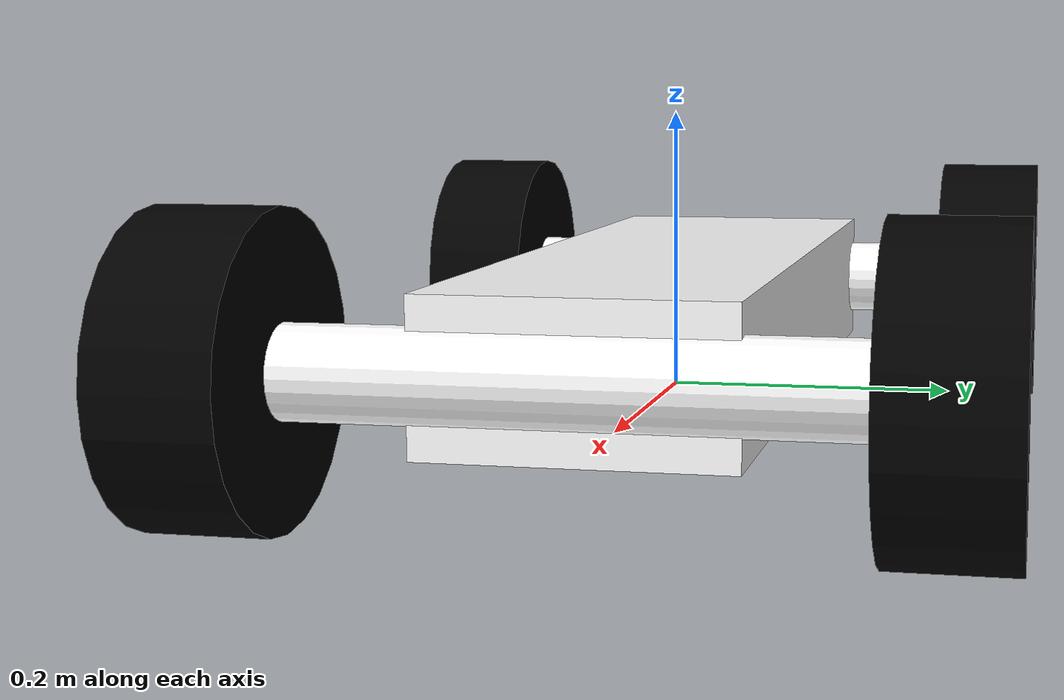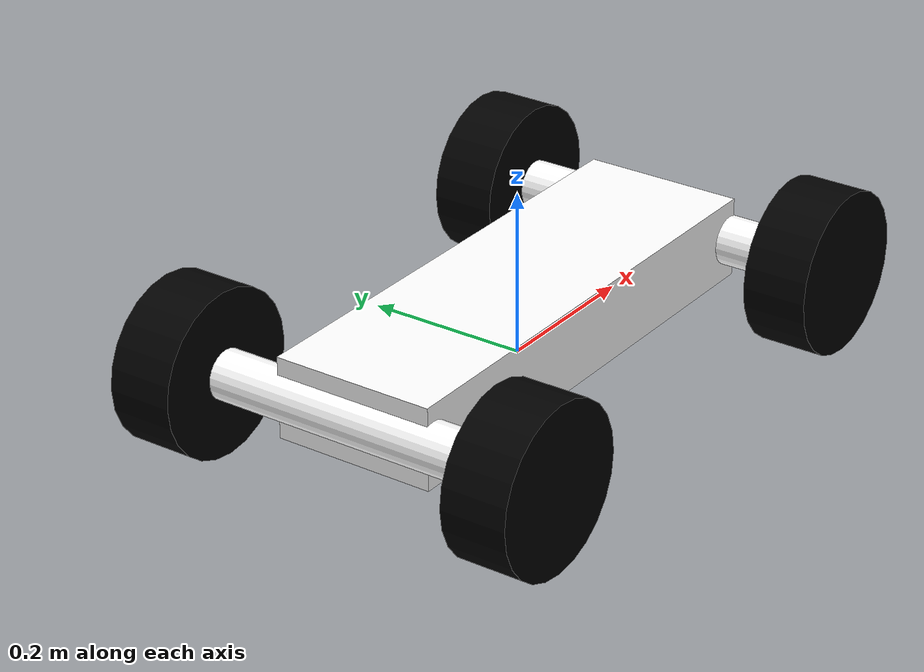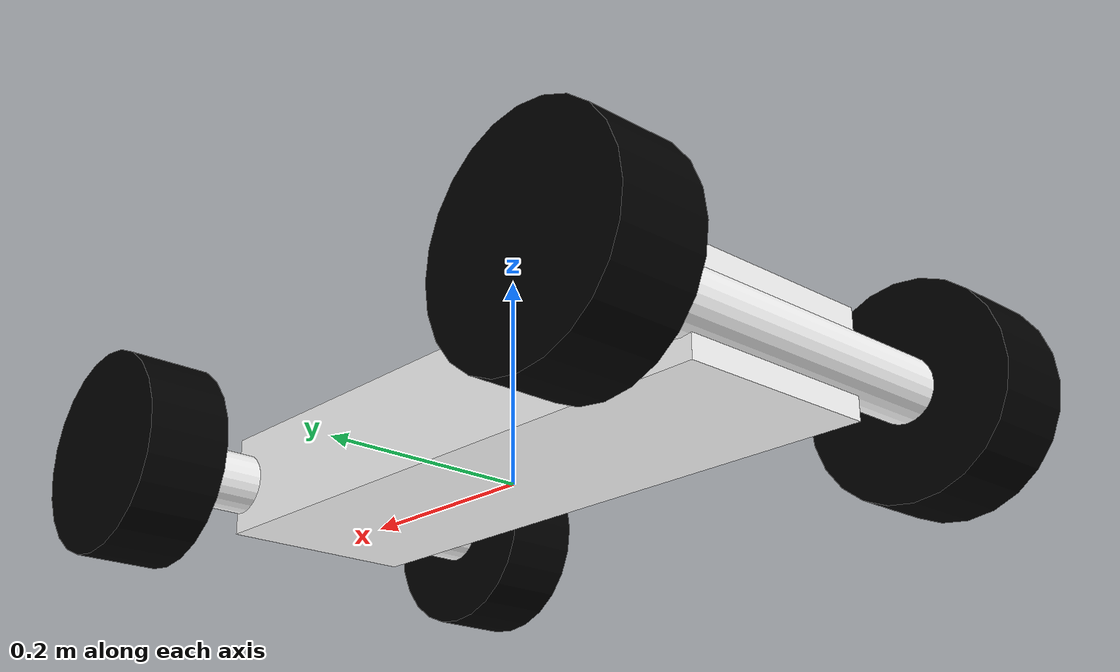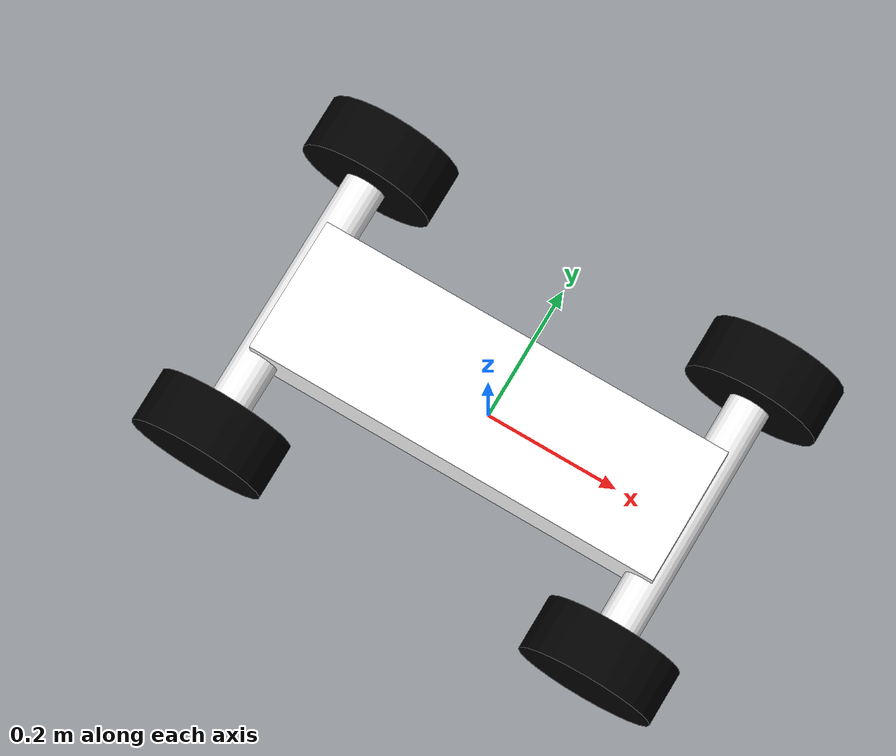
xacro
<?xml version="1.0"?>
<robot name="diff_4_wheel" xmlns:xacro="http://www.ros.org/wiki/xacro" >

    <xacro:include filename="inertial_macros.xacro"/>

    <material name="white">
        <color rgba="1 1 1 1" />
    </material>

    <material name="orange">
        <color rgba="1 0.3 0.1 1"/>
    </material>

    <material name="blue">
        <color rgba="0.2 0.2 1 1"/>
    </material>

    <material name="black">
        <color rgba="0 0 0 1"/>
    </material>

    <xacro:property name="mul1" value="0.2"/>
    <xacro:property name="mul2" value="0.2"/>

    <!-- BASE LINK -->

    <link name="base_link">

    </link>

    <joint name="base_footprint_joint" type="fixed">
        <parent link="base_link"/>
            <child link="base_footprint"/>
        <origin xyz="0 0 0" rpy="0 0 0"/>
    </joint>

    <link name="base_footprint">
    </link>

    <!-- CHASSIS LINK -->

    <joint name="chassis_joint" type="fixed">
        <parent link="base_link"/>
        <child link="chassis"/>
        <origin xyz="-0.31 0 0"/>
    </joint>

    <link name="chassis">
        <visual>
            <origin xyz="0.31 0 0.05"/>
            <geometry>
                <box size="0.62 0.2 0.1"/>
            </geometry>
            <material name="white"/>
        </visual>
        <collision>
            <origin xyz="0.31 0 0.05"/>
            <geometry>
                <box size="0.62 0.2 0.1"/>
            </geometry>
        </collision>
        <xacro:inertial_box mass="6.0" x="0.62" y="0.2" z="0.1">
            <origin xyz="0.31 0 0.05" rpy="0 0 0"/>
        </xacro:inertial_box>
    </link>

    <gazebo reference="chassis">
        <material>Gazebo/White</material>
    </gazebo>

    <!-- FRONT SUSPENSION LINK -->

    <joint name="front_suspension_joint" type="fixed">
        <parent link="base_link"/>
        <child link="front_suspension"/>
        <origin xyz="0.3 0 0.05" rpy="-${pi/2} 0 0" />
        <axis xyz="0 0 1"/>
    </joint>

    <link name="front_suspension">
        <visual>
            <geometry>
                <cylinder radius="0.03" length="0.36"/>
            </geometry>
            <material name="white"/>
        </visual>
        <collision>
            <geometry>
                <cylinder radius="0.03" length="0.36"/>
            </geometry>
        </collision>
        <xacro:inertial_cylinder mass="1.0" length="0.36" radius="0.03">
            <origin xyz="0 0 0" rpy="0 0 0"/>
        </xacro:inertial_cylinder>
    </link>

    <gazebo reference="front_suspension">
        <material>Gazebo/White</material>
    </gazebo>

    <!-- LEFT FRONT WHEEL LINK -->

    <joint name="left_front_wheel_joint" type="continuous">
        <parent link="base_link"/>
        <child link="left_front_wheel"/>
        <origin xyz="0.3 0.22 0.05" rpy="-${pi/2} 0 0" />
        <axis xyz="0 0 1"/>
    </joint>

    <link name="left_front_wheel">
        <visual>
            <geometry>
                <cylinder radius="0.1" length="0.08"/>
            </geometry>
            <material name="black"/>
        </visual>
        <collision>
            <geometry>
                <cylinder radius="0.1" length="0.08"/>
            </geometry>
        </collision>
        <xacro:inertial_cylinder mass="1.0" length="0.08" radius="0.1">
            <origin xyz="0 0 0" rpy="0 0 0"/>
        </xacro:inertial_cylinder>
    </link>

    <gazebo reference="left_front_wheel">
        <material>Gazebo/Black</material>
        <mul1>{mul1}</mul1>
        <mul2>{mul2}</mul2>
    </gazebo>

    <!-- RIGHT FRONT WHEEL LINK -->

    <joint name="right_front_wheel_joint" type="continuous">
        <parent link="base_link"/>
        <child link="right_front_wheel"/>
        <origin xyz="0.3 -0.22 0.05" rpy="${pi/2} 0 0" />
        <axis xyz="0 0 -1"/>
    </joint>

    <link name="right_front_wheel">
        <visual>
            <geometry>
                <cylinder radius="0.1" length="0.08"/>
            </geometry>
            <material name="black"/>
        </visual>
        <collision>
            <geometry>
                <cylinder radius="0.1" length="0.08"/>
            </geometry>
        </collision>
        <xacro:inertial_cylinder mass="1.0" length="0.08" radius="0.1">
            <origin xyz="0 0 0" rpy="0 0 0"/>
        </xacro:inertial_cylinder>
    </link>

    <gazebo reference="right_front_wheel">
        <material>Gazebo/Black</material>
        <mul1>{mul1}</mul1>
        <mul2>{mul2}</mul2>
    </gazebo>

    <!-- BACK SUSPENSION LINK -->

    <joint name="back_suspension_joint" type="fixed">
        <parent link="base_link"/>
        <child link="back_suspension"/>
        <origin xyz="-0.3 0 0.05" rpy="-${pi/2} 0 0" />
        <axis xyz="0 0 1"/>
    </joint>

    <link name="back_suspension">
        <visual>
            <geometry>
                <cylinder radius="0.03" length="0.36"/>
            </geometry>
            <material name="white"/>
        </visual>
        <collision>
            <geometry>
                <cylinder radius="0.03" length="0.36"/>
            </geometry>
        </collision>
        <xacro:inertial_cylinder mass="1.0" length="0.36" radius="0.03">
            <origin xyz="0 0 0" rpy="0 0 0"/>
        </xacro:inertial_cylinder>
    </link>

    <gazebo reference="back_suspension">
        <material>Gazebo/White</material>
    </gazebo>

    <!-- LEFT BACK WHEEL LINK -->

    <joint name="left_back_wheel_joint" type="continuous">
        <parent link="base_link"/>
        <child link="left_back_wheel"/>
        <origin xyz="-0.3 0.22 0.05" rpy="-${pi/2} 0 0" />
        <axis xyz="0 0 1"/>
    </joint>

    <link name="left_back_wheel">
        <visual>
            <geometry>
                <cylinder radius="0.1" length="0.08"/>
            </geometry>
            <material name="black"/>
        </visual>
        <collision>
            <geometry>
                <cylinder radius="0.1" length="0.08"/>
            </geometry>
        </collision>
        <xacro:inertial_cylinder mass="1.0" length="0.08" radius="0.1">
            <origin xyz="0 0 0" rpy="0 0 0"/>
        </xacro:inertial_cylinder>
    </link>

    <gazebo reference="left_back_wheel">
        <material>Gazebo/Black</material>
        <mul1>{mul1}</mul1>
        <mul2>{mul2}</mul2>
    </gazebo>

    <!-- RIGHT BACK WHEEL LINK -->

    <joint name="right_back_wheel_joint" type="continuous">
        <parent link="base_link"/>
        <child link="right_back_wheel"/>
        <origin xyz="-0.3 -0.22 0.05" rpy="${pi/2} 0 0" />
        <axis xyz="0 0 -1"/>
    </joint>

    <link name="right_back_wheel">
        <visual>
            <geometry>
                <cylinder radius="0.1" length="0.08"/>
            </geometry>
            <material name="black"/>
        </visual>
        <collision>
            <geometry>
                <cylinder radius="0.1" length="0.08"/>
            </geometry>
        </collision>
        <xacro:inertial_cylinder mass="1.0" length="0.08" radius="0.1">
            <origin xyz="0 0 0" rpy="0 0 0"/>
        </xacro:inertial_cylinder>
    </link>

    <gazebo reference="right_back_wheel">
        <material>Gazebo/Black</material>
        <mul1>{mul1}</mul1>
        <mul2>{mul2}</mul2>
    </gazebo>
</robot>
